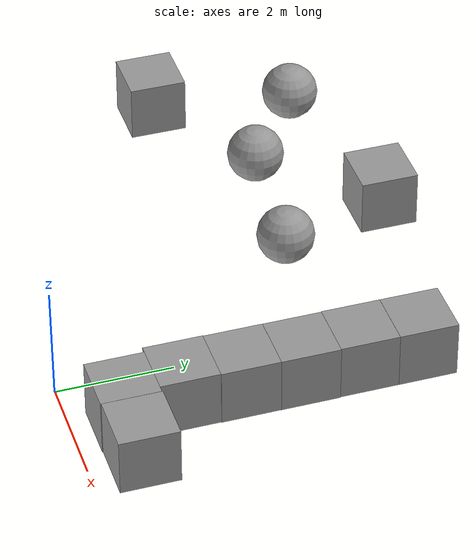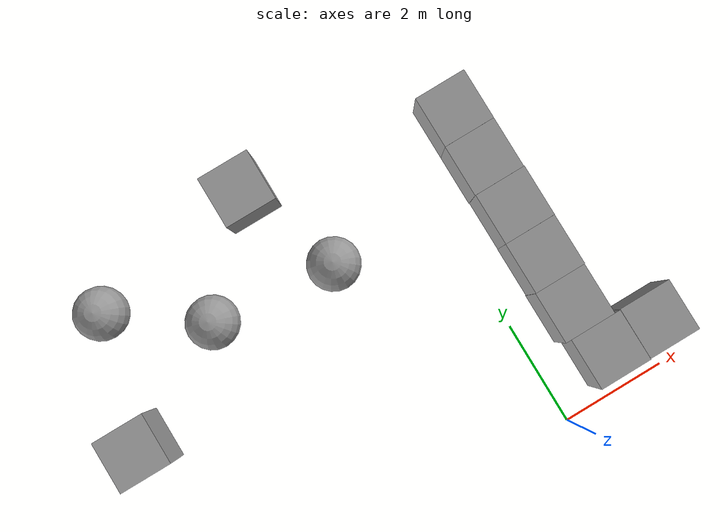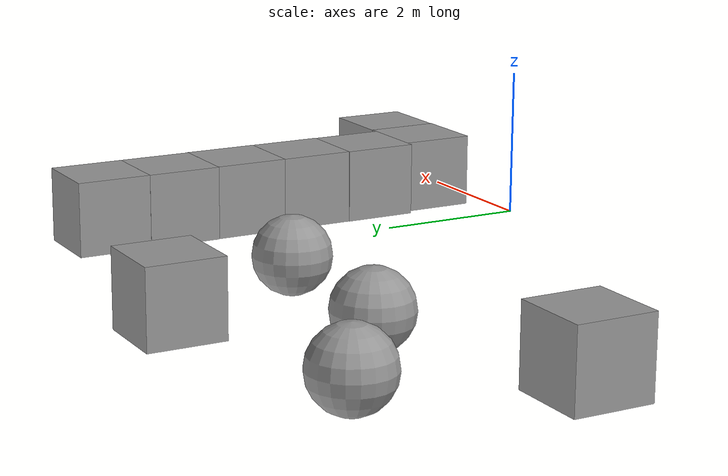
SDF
<sdf version="1.6">
 <world name="default">
  <gravity>0 0 -9.8</gravity>
  <magnetic_field>6e-06 2.3e-05 -4.2e-05</magnetic_field>
  <atmosphere type="adiabatic"/>
  <physics name="default_physics" default="0" type="ode">
   <max_step_size>0.001</max_step_size>
   <real_time_factor>1</real_time_factor>
   <real_time_update_rate>1000</real_time_update_rate>
  </physics>
  <scene>
   <ambient>0.4 0.4 0.4 1</ambient>
   <background>0.7 0.7 0.7 1</background>
   <shadows>1</shadows>
   <grid>0</grid>
   <origin_visual>0</origin_visual>
  </scene>
  <spherical_coordinates>
   <surface_model>EARTH_WGS84</surface_model>
   <latitude_deg>0</latitude_deg>
   <longitude_deg>0</longitude_deg>
   <elevation>0</elevation>
   <heading_deg>0</heading_deg>
  </spherical_coordinates>
  <light name="RetailShop_CeilingLight_001" type="point">
   <pose>2.77442 -3.62815 3.17847 0 -0 0</pose>
   <diffuse>0.2 0.2 0.2 1</diffuse>
   <specular>0.1 0.1 0.1 1</specular>
   <attenuation>
    <range>20</range>
    <constant>0.32</constant>
    <linear>0.01</linear>
    <quadratic>0.03</quadratic>
   </attenuation>
   <cast_shadows>0</cast_shadows>
   <direction>0 0 -1</direction>
  </light>
  <light name="RetailShop_CeilingLight_002" type="point">
   <pose>5.38399 -5.38371 3.17847 0 -0 0</pose>
   <diffuse>0.2 0.2 0.2 1</diffuse>
   <specular>0.1 0.1 0.1 1</specular>
   <attenuation>
    <range>20</range>
    <constant>0.32</constant>
    <linear>0.01</linear>
    <quadratic>0.03</quadratic>
   </attenuation>
   <cast_shadows>0</cast_shadows>
   <direction>0 0 -1</direction>
  </light>
  <light name="RetailShop_CeilingLight_003" type="point">
   <pose>5.38399 0.04192 3.17847 0 -0 0</pose>
   <diffuse>0.2 0.2 0.2 1</diffuse>
   <specular>0.1 0.1 0.1 1</specular>
   <attenuation>
    <range>20</range>
    <constant>0.32</constant>
    <linear>0.01</linear>
    <quadratic>0.03</quadratic>
   </attenuation>
   <cast_shadows>0</cast_shadows>
   <direction>0 0 -1</direction>
  </light>
  <light name="RetailShop_CeilingLight_004" type="point">
   <pose>-3.21067 -5.38371 3.17847 0 -0 0</pose>
   <diffuse>0.2 0.2 0.2 1</diffuse>
   <specular>0.1 0.1 0.1 1</specular>
   <attenuation>
    <range>20</range>
    <constant>0.32</constant>
    <linear>0.01</linear>
    <quadratic>0.03</quadratic>
   </attenuation>
   <cast_shadows>0</cast_shadows>
   <direction>0 0 -1</direction>
  </light>
  <light name="RetailShop_CeilingLight_005" type="point">
   <pose>-3.271 2.68593 3.17847 0 -0 0</pose>
   <diffuse>0.2 0.2 0.2 1</diffuse>
   <specular>0.1 0.1 0.1 1</specular>
   <attenuation>
    <range>20</range>
    <constant>0.32</constant>
    <linear>0.01</linear>
    <quadratic>0.03</quadratic>
   </attenuation>
   <cast_shadows>0</cast_shadows>
   <direction>0 0 -1</direction>
  </light>
  <light name="RetailShop_CeilingLight_006" type="point">
   <pose>1.4932 4.69237 3.17847 0 -0 0</pose>
   <diffuse>0.2 0.2 0.2 1</diffuse>
   <specular>0.1 0.1 0.1 1</specular>
   <attenuation>
    <range>20</range>
    <constant>0.32</constant>
    <linear>0.01</linear>
    <quadratic>0.03</quadratic>
   </attenuation>
   <cast_shadows>0</cast_shadows>
   <direction>0 0 -1</direction>
  </light>
  <audio><device>default</device></audio>
  <light name="user_directional_light_0" type="directional">
   <pose>1.49712 -12.0596 1 0 -0 0</pose>
   <diffuse>0.2 0.2 0.2 1</diffuse>
   <specular>0.1 0.1 0.1 1</specular>
   <direction>0.1 0.1 -0.9</direction>
   <attenuation>
    <range>20</range>
    <constant>0.5</constant>
    <linear>0.01</linear>
    <quadratic>0.001</quadratic>
   </attenuation>
  </light>
  <model name="unit_sphere_0">
   <pose>-2.19065 4.63232 0.513382 0.002254 0.001114 1e-06</pose>
   <link name="link">
    <inertial>
     <mass>1</mass>
     <inertia><ixx>0.1</ixx><ixy>0</ixy><ixz>0</ixz><iyy>0.1</iyy><iyz>0</iyz><izz>0.1</izz></inertia>
    </inertial>
    <collision name="collision"><geometry><sphere><radius>0.5</radius></sphere></geometry></collision>
    <visual name="visual">
     <geometry><sphere><radius>0.5</radius></sphere></geometry>
     <material>
      <script><name>Gazebo/Grey</name><uri>file://media/materials/scripts/gazebo.material</uri></script>
     </material>
    </visual>
   </link>
  </model>
  <model name="unit_sphere_1">
   <pose>-4.57768 4.85283 0.513382 0 -0 0</pose>
   <link name="link">
    <inertial>
     <mass>1</mass>
     <inertia><ixx>0.1</ixx><ixy>0</ixy><ixz>0</ixz><iyy>0.1</iyy><iyz>0</iyz><izz>0.1</izz></inertia>
    </inertial>
    <collision name="collision"><geometry><sphere><radius>0.5</radius></sphere></geometry></collision>
    <visual name="visual">
     <geometry><sphere><radius>0.5</radius></sphere></geometry>
     <material>
      <script><name>Gazebo/Grey</name><uri>file://media/materials/scripts/gazebo.material</uri></script>
     </material>
    </visual>
   </link>
  </model>
  <model name="unit_box">
   <pose>-2.96245 6.59694 0.513382 -0 -0 -2.1e-05</pose>
   <link name="link">
    <inertial>
     <mass>1</mass>
     <inertia>
      <ixx>0.166667</ixx>
      <ixy>0</ixy>
      <ixz>0</ixz>
      <iyy>0.166667</iyy>
      <iyz>0</iyz>
      <izz>0.166667</izz>
     </inertia>
    </inertial>
    <collision name="collision"><geometry><box><size>1 1 1</size></box></geometry></collision>
    <visual name="visual">
     <geometry><box><size>1 1 1</size></box></geometry>
     <material>
      <script><name>Gazebo/Grey</name><uri>file://media/materials/scripts/gazebo.material</uri></script>
     </material>
    </visual>
   </link>
  </model>
  <model name="unit_box_0">
   <pose>-6.84715 3.59268 0.513382 -0 -0 -0</pose>
   <link name="link">
    <inertial>
     <mass>1</mass>
     <inertia>
      <ixx>0.166667</ixx>
      <ixy>0</ixy>
      <ixz>0</ixz>
      <iyy>0.166667</iyy>
      <iyz>0</iyz>
      <izz>0.166667</izz>
     </inertia>
    </inertial>
    <collision name="collision"><geometry><box><size>1 1 1</size></box></geometry></collision>
    <visual name="visual">
     <geometry><box><size>1 1 1</size></box></geometry>
     <material>
      <script><name>Gazebo/Grey</name><uri>file://media/materials/scripts/gazebo.material</uri></script>
     </material>
    </visual>
   </link>
  </model>
  <model name="unit_sphere_2">
   <pose>-6.20529 6.0175 0.513382 0 -0 0</pose>
   <link name="link">
    <inertial>
     <mass>1</mass>
     <inertia><ixx>0.1</ixx><ixy>0</ixy><ixz>0</ixz><iyy>0.1</iyy><iyz>0</iyz><izz>0.1</izz></inertia>
    </inertial>
    <collision name="collision"><geometry><sphere><radius>0.5</radius></sphere></geometry></collision>
    <visual name="visual">
     <geometry><sphere><radius>0.5</radius></sphere></geometry>
     <material>
      <script><name>Gazebo/Grey</name><uri>file://media/materials/scripts/gazebo.material</uri></script>
     </material>
    </visual>
   </link>
  </model>
  <model name="unit_box_1">
   <pose>2.14942 0.853758 0.513382 -0 -0 -0.000239</pose>
   <link name="link">
    <inertial>
     <mass>1</mass>
     <inertia>
      <ixx>0.166667</ixx>
      <ixy>0</ixy>
      <ixz>0</ixz>
      <iyy>0.166667</iyy>
      <iyz>0</iyz>
      <izz>0.166667</izz>
     </inertia>
    </inertial>
    <collision name="collision"><geometry><box><size>1 1 1</size></box></geometry></collision>
    <visual name="visual">
     <geometry><box><size>1 1 1</size></box></geometry>
     <material>
      <script><name>Gazebo/Grey</name><uri>file://media/materials/scripts/gazebo.material</uri></script>
     </material>
    </visual>
   </link>
  </model>
  <model name="unit_box_2">
   <pose>1.14803 0.840108 0.513382 0 -0 0.002564</pose>
   <link name="link">
    <inertial>
     <mass>1</mass>
     <inertia>
      <ixx>0.166667</ixx>
      <ixy>0</ixy>
      <ixz>0</ixz>
      <iyy>0.166667</iyy>
      <iyz>0</iyz>
      <izz>0.166667</izz>
     </inertia>
    </inertial>
    <collision name="collision"><geometry><box><size>1 1 1</size></box></geometry></collision>
    <visual name="visual">
     <geometry><box><size>1 1 1</size></box></geometry>
     <material>
      <script><name>Gazebo/Grey</name><uri>file://media/materials/scripts/gazebo.material</uri></script>
     </material>
    </visual>
   </link>
  </model>
  <model name="unit_box_3">
   <pose>1.03747 1.83985 0.513382 0 -0 0.002566</pose>
   <link name="link">
    <inertial>
     <mass>1</mass>
     <inertia>
      <ixx>0.166667</ixx>
      <ixy>0</ixy>
      <ixz>0</ixz>
      <iyy>0.166667</iyy>
      <iyz>0</iyz>
      <izz>0.166667</izz>
     </inertia>
    </inertial>
    <collision name="collision"><geometry><box><size>1 1 1</size></box></geometry></collision>
    <visual name="visual">
     <geometry><box><size>1 1 1</size></box></geometry>
     <material>
      <script><name>Gazebo/Grey</name><uri>file://media/materials/scripts/gazebo.material</uri></script>
     </material>
    </visual>
   </link>
  </model>
  <model name="unit_box_4">
   <pose>1.04529 2.83988 0.513382 0 -0 0.002564</pose>
   <link name="link">
    <inertial>
     <mass>1</mass>
     <inertia>
      <ixx>0.166667</ixx>
      <ixy>0</ixy>
      <ixz>0</ixz>
      <iyy>0.166667</iyy>
      <iyz>0</iyz>
      <izz>0.166667</izz>
     </inertia>
    </inertial>
    <collision name="collision"><geometry><box><size>1 1 1</size></box></geometry></collision>
    <visual name="visual">
     <geometry><box><size>1 1 1</size></box></geometry>
     <material>
      <script><name>Gazebo/Grey</name><uri>file://media/materials/scripts/gazebo.material</uri></script>
     </material>
    </visual>
   </link>
  </model>
  <model name="unit_box_5">
   <pose>1.04613 3.84002 0.513382 0 -0 0.00264</pose>
   <link name="link">
    <inertial>
     <mass>1</mass>
     <inertia>
      <ixx>0.166667</ixx>
      <ixy>0</ixy>
      <ixz>0</ixz>
      <iyy>0.166667</iyy>
      <iyz>0</iyz>
      <izz>0.166667</izz>
     </inertia>
    </inertial>
    <collision name="collision"><geometry><box><size>1 1 1</size></box></geometry></collision>
    <visual name="visual">
     <geometry><box><size>1 1 1</size></box></geometry>
     <material>
      <script><name>Gazebo/Grey</name><uri>file://media/materials/scripts/gazebo.material</uri></script>
     </material>
    </visual>
   </link>
  </model>
  <model name="unit_box_6">
   <pose>1.03253 4.8403 0.513382 0 -0 0.002276</pose>
   <link name="link">
    <inertial>
     <mass>1</mass>
     <inertia>
      <ixx>0.166667</ixx>
      <ixy>0</ixy>
      <ixz>0</ixz>
      <iyy>0.166667</iyy>
      <iyz>0</iyz>
      <izz>0.166667</izz>
     </inertia>
    </inertial>
    <collision name="collision"><geometry><box><size>1 1 1</size></box></geometry></collision>
    <visual name="visual">
     <geometry><box><size>1 1 1</size></box></geometry>
     <material>
      <script><name>Gazebo/Grey</name><uri>file://media/materials/scripts/gazebo.material</uri></script>
     </material>
    </visual>
   </link>
  </model>
  <model name="unit_box_7">
   <pose>1.03157 5.84053 0.513382 0 -0 0.002233</pose>
   <link name="link">
    <inertial>
     <mass>1</mass>
     <inertia>
      <ixx>0.166667</ixx>
      <ixy>0</ixy>
      <ixz>0</ixz>
      <iyy>0.166667</iyy>
      <iyz>0</iyz>
      <izz>0.166667</izz>
     </inertia>
    </inertial>
    <collision name="collision"><geometry><box><size>1 1 1</size></box></geometry></collision>
    <visual name="visual">
     <geometry><box><size>1 1 1</size></box></geometry>
     <material>
      <script><name>Gazebo/Grey</name><uri>file://media/materials/scripts/gazebo.material</uri></script>
     </material>
    </visual>
   </link>
  </model>
 </world>
</sdf>
